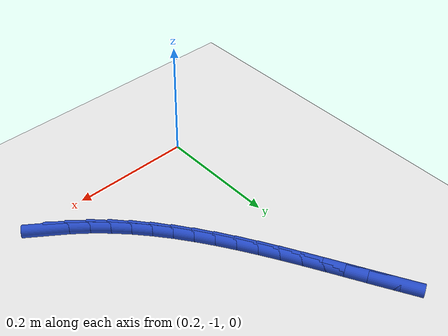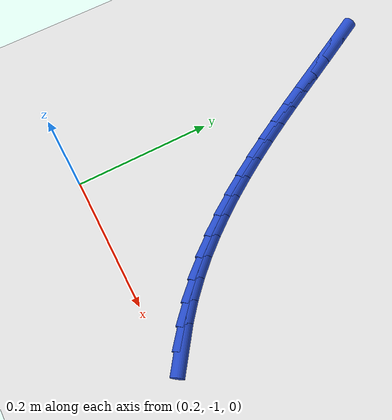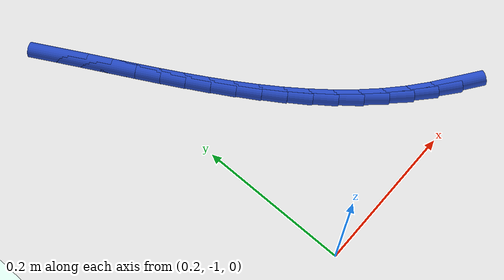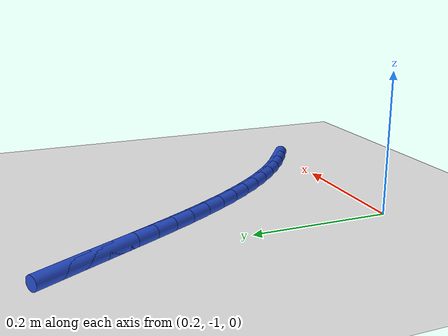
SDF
<sdf version="1.6">
 <world name="default">
  <model name="ground_plane">
   <static>1</static>
   <link name="link">
    <collision name="collision">
     <geometry><plane><normal>0 0 1</normal><size>100 100</size></plane></geometry>
     <surface><friction><ode><mu>100</mu><mu2>50</mu2></ode></friction></surface>
    </collision>
    <visual name="visual">
     <cast_shadows>0</cast_shadows>
     <geometry><plane><normal>0 0 1</normal><size>100 100</size></plane></geometry>
     <material>
      <script><uri>file://media/materials/scripts/gazebo.material</uri><name>Gazebo/WhiteGlow</name></script>
     </material>
    </visual>
   </link>
  </model>
  <model name="line">
   <link name="link_176">
    <pose>0.4774319248291289 -0.9735964621447077 0.01 0 1.57 -0.6157869063900994</pose>
    <collision name="collision">
     <geometry><cylinder><radius>0.01</radius><length>0.08</length></cylinder></geometry>
    </collision>
    <visual name="visual">
     <material>
      <script><name>Gazebo/Blue</name><uri>file://media/materials/scripts/gazebo.material</uri></script>
     </material>
     <geometry><cylinder><radius>0.01</radius><length>0.08</length></cylinder></geometry>
    </visual>
   </link>
   <link name="link_177">
    <pose>0.45111149745010054 -0.9549729784628633 0.01 0 1.57 -0.678911754381109</pose>
    <collision name="collision">
     <geometry><cylinder><radius>0.01</radius><length>0.08</length></cylinder></geometry>
    </collision>
    <visual name="visual">
     <material>
      <script><name>Gazebo/Blue</name><uri>file://media/materials/scripts/gazebo.material</uri></script>
     </material>
     <geometry><cylinder><radius>0.01</radius><length>0.08</length></cylinder></geometry>
    </visual>
   </link>
   <link name="link_178">
    <pose>0.4261521978678998 -0.9348342413419846 0.01 0 1.57 -0.7410162738055648</pose>
    <collision name="collision">
     <geometry><cylinder><radius>0.01</radius><length>0.08</length></cylinder></geometry>
    </collision>
    <visual name="visual">
     <material>
      <script><name>Gazebo/Blue</name><uri>file://media/materials/scripts/gazebo.material</uri></script>
     </material>
     <geometry><cylinder><radius>0.01</radius><length>0.08</length></cylinder></geometry>
    </visual>
   </link>
   <link name="link_179">
    <pose>0.4025349935816355 -0.9132255659936163 0.01 0 1.57 -0.7980495886702184</pose>
    <collision name="collision">
     <geometry><cylinder><radius>0.01</radius><length>0.08</length></cylinder></geometry>
    </collision>
    <visual name="visual">
     <material>
      <script><name>Gazebo/Blue</name><uri>file://media/materials/scripts/gazebo.material</uri></script>
     </material>
     <geometry><cylinder><radius>0.01</radius><length>0.08</length></cylinder></geometry>
    </visual>
   </link>
   <link name="link_180">
    <pose>0.38015422800661086 -0.8902712159889095 0.01 0 1.57 -0.8496968993842018</pose>
    <collision name="collision">
     <geometry><cylinder><radius>0.01</radius><length>0.08</length></cylinder></geometry>
    </collision>
    <visual name="visual">
     <material>
      <script><name>Gazebo/Blue</name><uri>file://media/materials/scripts/gazebo.material</uri></script>
     </material>
     <geometry><cylinder><radius>0.01</radius><length>0.08</length></cylinder></geometry>
    </visual>
   </link>
   <link name="link_181">
    <pose>0.3589037605903267 -0.8660958959826306 0.01 0 1.57 -0.8958372674884547</pose>
    <collision name="collision">
     <geometry><cylinder><radius>0.01</radius><length>0.08</length></cylinder></geometry>
    </collision>
    <visual name="visual">
     <material>
      <script><name>Gazebo/Blue</name><uri>file://media/materials/scripts/gazebo.material</uri></script>
     </material>
     <geometry><cylinder><radius>0.01</radius><length>0.08</length></cylinder></geometry>
    </visual>
   </link>
   <link name="link_182">
    <pose>0.33867745078028416 -0.8408243106295465 0.01 0 1.57 -0.9364802906824868</pose>
    <collision name="collision">
     <geometry><cylinder><radius>0.01</radius><length>0.08</length></cylinder></geometry>
    </collision>
    <visual name="visual">
     <material>
      <script><name>Gazebo/Blue</name><uri>file://media/materials/scripts/gazebo.material</uri></script>
     </material>
     <geometry><cylinder><radius>0.01</radius><length>0.08</length></cylinder></geometry>
    </visual>
   </link>
   <link name="link_183">
    <pose>0.31936915802398375 -0.8145811645844231 0.01 0 1.57 -0.971723541510386</pose>
    <collision name="collision">
     <geometry><cylinder><radius>0.01</radius><length>0.08</length></cylinder></geometry>
    </collision>
    <visual name="visual">
     <material>
      <script><name>Gazebo/Blue</name><uri>file://media/materials/scripts/gazebo.material</uri></script>
     </material>
     <geometry><cylinder><radius>0.01</radius><length>0.08</length></cylinder></geometry>
    </visual>
   </link>
   <link name="link_184">
    <pose>0.3008727417689274 -0.7874911625020282 0.01 0 1.57 -1.0017152359857422</pose>
    <collision name="collision">
     <geometry><cylinder><radius>0.01</radius><length>0.08</length></cylinder></geometry>
    </collision>
    <visual name="visual">
     <material>
      <script><name>Gazebo/Blue</name><uri>file://media/materials/scripts/gazebo.material</uri></script>
     </material>
     <geometry><cylinder><radius>0.01</radius><length>0.08</length></cylinder></geometry>
    </visual>
   </link>
   <link name="link_185">
    <pose>0.2830820614626157 -0.7596790090371278 0.01 0 1.57 -1.026624033171737</pose>
    <collision name="collision">
     <geometry><cylinder><radius>0.01</radius><length>0.08</length></cylinder></geometry>
    </collision>
    <visual name="visual">
     <material>
      <script><name>Gazebo/Blue</name><uri>file://media/materials/scripts/gazebo.material</uri></script>
     </material>
     <geometry><cylinder><radius>0.01</radius><length>0.08</length></cylinder></geometry>
    </visual>
   </link>
   <link name="link_186">
    <pose>0.2658909765525497 -0.7312694088444887 0.01 0 1.57 -1.0466160247650997</pose>
    <collision name="collision">
     <geometry><cylinder><radius>0.01</radius><length>0.08</length></cylinder></geometry>
    </collision>
    <visual name="visual">
     <material>
      <script><name>Gazebo/Blue</name><uri>file://media/materials/scripts/gazebo.material</uri></script>
     </material>
     <geometry><cylinder><radius>0.01</radius><length>0.08</length></cylinder></geometry>
    </visual>
   </link>
   <link name="link_187">
    <pose>0.2491933464862302 -0.7023870665788771 0.01 0 1.57 -1.0618379955619457</pose>
    <collision name="collision">
     <geometry><cylinder><radius>0.01</radius><length>0.08</length></cylinder></geometry>
    </collision>
    <visual name="visual">
     <material>
      <script><name>Gazebo/Blue</name><uri>file://media/materials/scripts/gazebo.material</uri></script>
     </material>
     <geometry><cylinder><radius>0.01</radius><length>0.08</length></cylinder></geometry>
    </visual>
   </link>
   <link name="link_188">
    <pose>0.2328830307111585 -0.6731566868950603 0.01 0 1.57 -1.0724056854706052</pose>
    <collision name="collision">
     <geometry><cylinder><radius>0.01</radius><length>0.08</length></cylinder></geometry>
    </collision>
    <visual name="visual">
     <material>
      <script><name>Gazebo/Blue</name><uri>file://media/materials/scripts/gazebo.material</uri></script>
     </material>
     <geometry><cylinder><radius>0.01</radius><length>0.08</length></cylinder></geometry>
    </visual>
   </link>
   <link name="link_189">
    <pose>0.21685388867483496 -0.6437029744478033 0.01 0 1.57 -1.0783958123184905</pose>
    <collision name="collision">
     <geometry><cylinder><radius>0.01</radius><length>0.08</length></cylinder></geometry>
    </collision>
    <visual name="visual">
     <material>
      <script><name>Gazebo/Blue</name><uri>file://media/materials/scripts/gazebo.material</uri></script>
     </material>
     <geometry><cylinder><radius>0.01</radius><length>0.08</length></cylinder></geometry>
    </visual>
   </link>
   <link name="link_190">
    <pose>0.2009997798247615 -0.6141506338918747 0.01 0 1.57 -1.0798408360243268</pose>
    <collision name="collision">
     <geometry><cylinder><radius>0.01</radius><length>0.08</length></cylinder></geometry>
    </collision>
    <visual name="visual">
     <material>
      <script><name>Gazebo/Blue</name><uri>file://media/materials/scripts/gazebo.material</uri></script>
     </material>
     <geometry><cylinder><radius>0.01</radius><length>0.08</length></cylinder></geometry>
    </visual>
   </link>
   <link name="link_191">
    <pose>0.18521456360843877 -0.5846243698820406 0.01 0 1.57 -1.0767604235464887</pose>
    <collision name="collision">
     <geometry><cylinder><radius>0.01</radius><length>0.08</length></cylinder></geometry>
    </collision>
    <visual name="visual">
     <material>
      <script><name>Gazebo/Blue</name><uri>file://media/materials/scripts/gazebo.material</uri></script>
     </material>
     <geometry><cylinder><radius>0.01</radius><length>0.08</length></cylinder></geometry>
    </visual>
   </link>
   <link name="link_192">
    <pose>0.16939302265315448 -0.5552481611841799 0.01 0 1.57 -1.072412952732952</pose>
    <collision name="collision">
     <geometry><cylinder><radius>0.01</radius><length>0.08</length></cylinder></geometry>
    </collision>
    <visual name="visual">
     <material>
      <script><name>Gazebo/Blue</name><uri>file://media/materials/scripts/gazebo.material</uri></script>
     </material>
     <geometry><cylinder><radius>0.01</radius><length>0.08</length></cylinder></geometry>
    </visual>
   </link>
  </model>
 </world>
</sdf>
